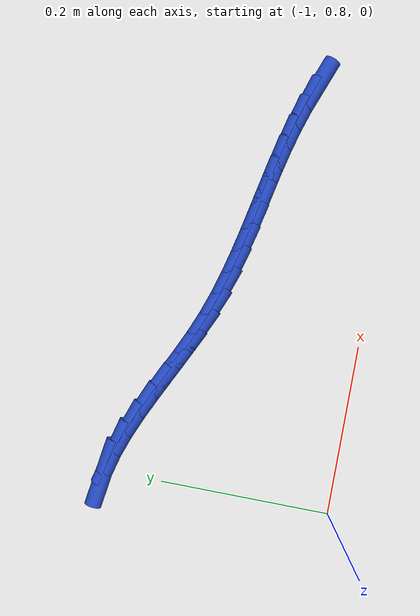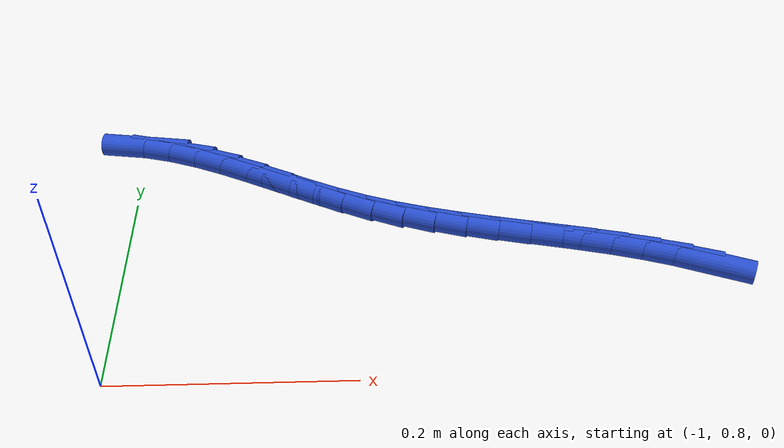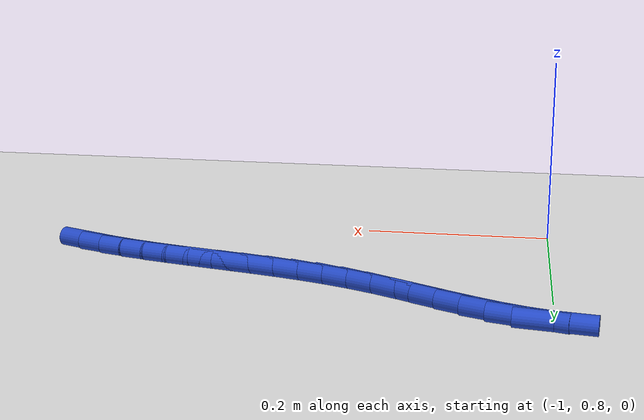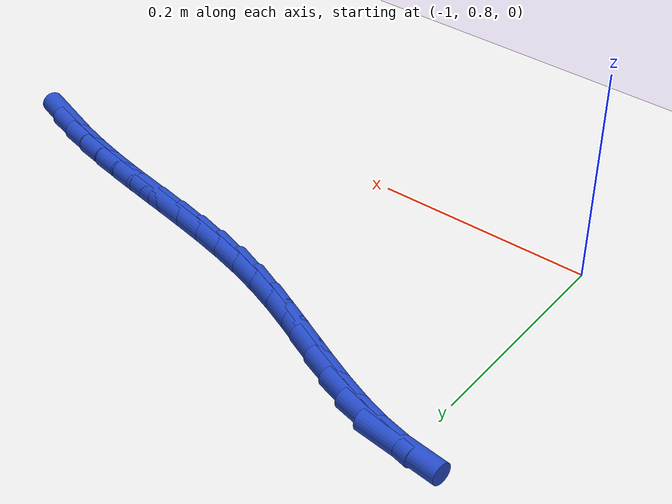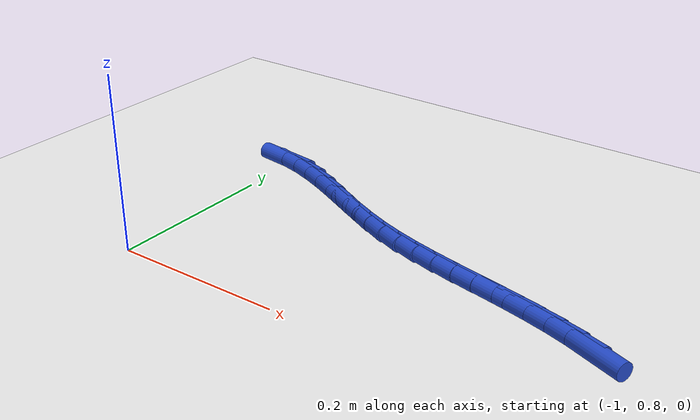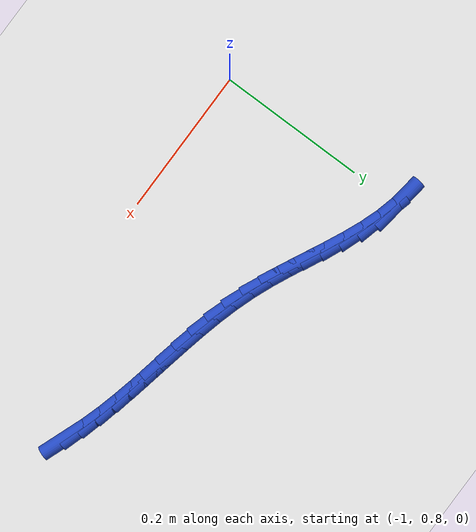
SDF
<sdf version="1.6">
 <world name="default">
  <model name="ground_plane">
   <static>1</static>
   <link name="link">
    <collision name="collision">
     <geometry><plane><normal>0 0 1</normal><size>100 100</size></plane></geometry>
     <surface><friction><ode><mu>100</mu><mu2>50</mu2></ode></friction></surface>
    </collision>
    <visual name="visual">
     <cast_shadows>0</cast_shadows>
     <geometry><plane><normal>0 0 1</normal><size>100 100</size></plane></geometry>
     <material>
      <script><uri>file://media/materials/scripts/gazebo.material</uri><name>Gazebo/WhiteGlow</name></script>
     </material>
    </visual>
   </link>
  </model>
  <model name="line">
   <link name="link_40">
    <pose>-0.5089756089896693 0.9085449421616819 0.01 0 1.57 -0.35529582634054047</pose>
    <collision name="collision">
     <geometry><cylinder><radius>0.01</radius><length>0.08</length></cylinder></geometry>
    </collision>
    <visual name="visual">
     <material>
      <script><name>Gazebo/Blue</name><uri>file://media/materials/scripts/gazebo.material</uri></script>
     </material>
     <geometry><cylinder><radius>0.01</radius><length>0.08</length></cylinder></geometry>
    </visual>
   </link>
   <link name="link_41">
    <pose>-0.5340060410290537 0.9178322749208846 0.01 0 1.57 -0.30006851788065747</pose>
    <collision name="collision">
     <geometry><cylinder><radius>0.01</radius><length>0.08</length></cylinder></geometry>
    </collision>
    <visual name="visual">
     <material>
      <script><name>Gazebo/Blue</name><uri>file://media/materials/scripts/gazebo.material</uri></script>
     </material>
     <geometry><cylinder><radius>0.01</radius><length>0.08</length></cylinder></geometry>
    </visual>
   </link>
   <link name="link_42">
    <pose>-0.5595612601018097 0.9257393491272026 0.01 0 1.57 -0.25680905375745994</pose>
    <collision name="collision">
     <geometry><cylinder><radius>0.01</radius><length>0.08</length></cylinder></geometry>
    </collision>
    <visual name="visual">
     <material>
      <script><name>Gazebo/Blue</name><uri>file://media/materials/scripts/gazebo.material</uri></script>
     </material>
     <geometry><cylinder><radius>0.01</radius><length>0.08</length></cylinder></geometry>
    </visual>
   </link>
   <link name="link_43">
    <pose>-0.5855502722677202 0.9325642629703106 0.01 0 1.57 -0.22551051430375543</pose>
    <collision name="collision">
     <geometry><cylinder><radius>0.01</radius><length>0.08</length></cylinder></geometry>
    </collision>
    <visual name="visual">
     <material>
      <script><name>Gazebo/Blue</name><uri>file://media/materials/scripts/gazebo.material</uri></script>
     </material>
     <geometry><cylinder><radius>0.01</radius><length>0.08</length></cylinder></geometry>
    </visual>
   </link>
   <link name="link_44">
    <pose>-0.6118820835865675 0.938605114639884 0.01 0 1.57 -0.20599501821255786</pose>
    <collision name="collision">
     <geometry><cylinder><radius>0.01</radius><length>0.08</length></cylinder></geometry>
    </collision>
    <visual name="visual">
     <material>
      <script><name>Gazebo/Blue</name><uri>file://media/materials/scripts/gazebo.material</uri></script>
     </material>
     <geometry><cylinder><radius>0.01</radius><length>0.08</length></cylinder></geometry>
    </visual>
   </link>
   <link name="link_45">
    <pose>-0.6384657001181342 0.9441600023255977 0.01 0 1.57 -0.19804752755272131</pose>
    <collision name="collision">
     <geometry><cylinder><radius>0.01</radius><length>0.08</length></cylinder></geometry>
    </collision>
    <visual name="visual">
     <material>
      <script><name>Gazebo/Blue</name><uri>file://media/materials/scripts/gazebo.material</uri></script>
     </material>
     <geometry><cylinder><radius>0.01</radius><length>0.08</length></cylinder></geometry>
    </visual>
   </link>
   <link name="link_46">
    <pose>-0.6652101279222029 0.9495270242171271 0.01 0 1.57 -0.20149465928132004</pose>
    <collision name="collision">
     <geometry><cylinder><radius>0.01</radius><length>0.08</length></cylinder></geometry>
    </collision>
    <visual name="visual">
     <material>
      <script><name>Gazebo/Blue</name><uri>file://media/materials/scripts/gazebo.material</uri></script>
     </material>
     <geometry><cylinder><radius>0.01</radius><length>0.08</length></cylinder></geometry>
    </visual>
   </link>
   <link name="link_47">
    <pose>-0.6920243730585564 0.9550042785041474 0.01 0 1.57 -0.2162337912938419</pose>
    <collision name="collision">
     <geometry><cylinder><radius>0.01</radius><length>0.08</length></cylinder></geometry>
    </collision>
    <visual name="visual">
     <material>
      <script><name>Gazebo/Blue</name><uri>file://media/materials/scripts/gazebo.material</uri></script>
     </material>
     <geometry><cylinder><radius>0.01</radius><length>0.08</length></cylinder></geometry>
    </visual>
   </link>
   <link name="link_48">
    <pose>-0.7188174415869772 0.9608898633763336 0.01 0 1.57 -0.24221785541856167</pose>
    <collision name="collision">
     <geometry><cylinder><radius>0.01</radius><length>0.08</length></cylinder></geometry>
    </collision>
    <visual name="visual">
     <material>
      <script><name>Gazebo/Blue</name><uri>file://media/materials/scripts/gazebo.material</uri></script>
     </material>
     <geometry><cylinder><radius>0.01</radius><length>0.08</length></cylinder></geometry>
    </visual>
   </link>
   <link name="link_49">
    <pose>-0.7454983395672478 0.9674818770233611 0.01 0 1.57 -0.2793982940271897</pose>
    <collision name="collision">
     <geometry><cylinder><radius>0.01</radius><length>0.08</length></cylinder></geometry>
    </collision>
    <visual name="visual">
     <material>
      <script><name>Gazebo/Blue</name><uri>file://media/materials/scripts/gazebo.material</uri></script>
     </material>
     <geometry><cylinder><radius>0.01</radius><length>0.08</length></cylinder></geometry>
    </visual>
   </link>
   <link name="link_50">
    <pose>-0.7719760730591512 0.9750784176349052 0.01 0 1.57 -0.32762724917651614</pose>
    <collision name="collision">
     <geometry><cylinder><radius>0.01</radius><length>0.08</length></cylinder></geometry>
    </collision>
    <visual name="visual">
     <material>
      <script><name>Gazebo/Blue</name><uri>file://media/materials/scripts/gazebo.material</uri></script>
     </material>
     <geometry><cylinder><radius>0.01</radius><length>0.08</length></cylinder></geometry>
    </visual>
   </link>
   <link name="link_51">
    <pose>-0.7981596481224692 0.9839775834006405 0.01 0 1.57 -0.38388838480037374</pose>
    <collision name="collision">
     <geometry><cylinder><radius>0.01</radius><length>0.08</length></cylinder></geometry>
    </collision>
    <visual name="visual">
     <material>
      <script><name>Gazebo/Blue</name><uri>file://media/materials/scripts/gazebo.material</uri></script>
     </material>
     <geometry><cylinder><radius>0.01</radius><length>0.08</length></cylinder></geometry>
    </visual>
   </link>
   <link name="link_52">
    <pose>-0.8239720446473375 0.9944039449346422 0.01 0 1.57 -0.42797222812863983</pose>
    <collision name="collision">
     <geometry><cylinder><radius>0.01</radius><length>0.08</length></cylinder></geometry>
    </collision>
    <visual name="visual">
     <material>
      <script><name>Gazebo/Blue</name><uri>file://media/materials/scripts/gazebo.material</uri></script>
     </material>
     <geometry><cylinder><radius>0.01</radius><length>0.08</length></cylinder></geometry>
    </visual>
   </link>
   <link name="link_53">
    <pose>-0.8494425330680174 1.006022792695016 0.01 0 1.57 -0.4513946037116816</pose>
    <collision name="collision">
     <geometry><cylinder><radius>0.01</radius><length>0.08</length></cylinder></geometry>
    </collision>
    <visual name="visual">
     <material>
      <script><name>Gazebo/Blue</name><uri>file://media/materials/scripts/gazebo.material</uri></script>
     </material>
     <geometry><cylinder><radius>0.01</radius><length>0.08</length></cylinder></geometry>
    </visual>
   </link>
   <link name="link_54">
    <pose>-0.8746492295364838 1.0182424004800605 0.01 0 1.57 -0.4545470770778671</pose>
    <collision name="collision">
     <geometry><cylinder><radius>0.01</radius><length>0.08</length></cylinder></geometry>
    </collision>
    <visual name="visual">
     <material>
      <script><name>Gazebo/Blue</name><uri>file://media/materials/scripts/gazebo.material</uri></script>
     </material>
     <geometry><cylinder><radius>0.01</radius><length>0.08</length></cylinder></geometry>
    </visual>
   </link>
   <link name="link_55">
    <pose>-0.8996705076663845 1.0304696873748564 0.01 0 1.57 -0.4371294426050382</pose>
    <collision name="collision">
     <geometry><cylinder><radius>0.01</radius><length>0.08</length></cylinder></geometry>
    </collision>
    <visual name="visual">
     <material>
      <script><name>Gazebo/Blue</name><uri>file://media/materials/scripts/gazebo.material</uri></script>
     </material>
     <geometry><cylinder><radius>0.01</radius><length>0.08</length></cylinder></geometry>
    </visual>
   </link>
   <link name="link_56">
    <pose>-0.9245847410713676 1.0421115724644856 0.01 0 1.57 -0.39801959434615647</pose>
    <collision name="collision">
     <geometry><cylinder><radius>0.01</radius><length>0.08</length></cylinder></geometry>
    </collision>
    <visual name="visual">
     <material>
      <script><name>Gazebo/Blue</name><uri>file://media/materials/scripts/gazebo.material</uri></script>
     </material>
     <geometry><cylinder><radius>0.01</radius><length>0.08</length></cylinder></geometry>
    </visual>
   </link>
   <link name="link_57">
    <pose>-0.9494703033650808 1.052574974834028 0.01 0 1.57 -0.3354057981611847</pose>
    <collision name="collision">
     <geometry><cylinder><radius>0.01</radius><length>0.08</length></cylinder></geometry>
    </collision>
    <visual name="visual">
     <material>
      <script><name>Gazebo/Blue</name><uri>file://media/materials/scripts/gazebo.material</uri></script>
     </material>
     <geometry><cylinder><radius>0.01</radius><length>0.08</length></cylinder></geometry>
    </visual>
   </link>
   <link name="link_58">
    <pose>-0.9744055681611726 1.0612668135685657 0.01 0 1.57 -0.24728147892631172</pose>
    <collision name="collision">
     <geometry><cylinder><radius>0.01</radius><length>0.08</length></cylinder></geometry>
    </collision>
    <visual name="visual">
     <material>
      <script><name>Gazebo/Blue</name><uri>file://media/materials/scripts/gazebo.material</uri></script>
     </material>
     <geometry><cylinder><radius>0.01</radius><length>0.08</length></cylinder></geometry>
    </visual>
   </link>
   <link name="link_59">
    <pose>-0.9994689090732907 1.0675940077531796 0.01 0 1.57 -0.1352908183445229</pose>
    <collision name="collision">
     <geometry><cylinder><radius>0.01</radius><length>0.08</length></cylinder></geometry>
    </collision>
    <visual name="visual">
     <material>
      <script><name>Gazebo/Blue</name><uri>file://media/materials/scripts/gazebo.material</uri></script>
     </material>
     <geometry><cylinder><radius>0.01</radius><length>0.08</length></cylinder></geometry>
    </visual>
   </link>
  </model>
 </world>
</sdf>
